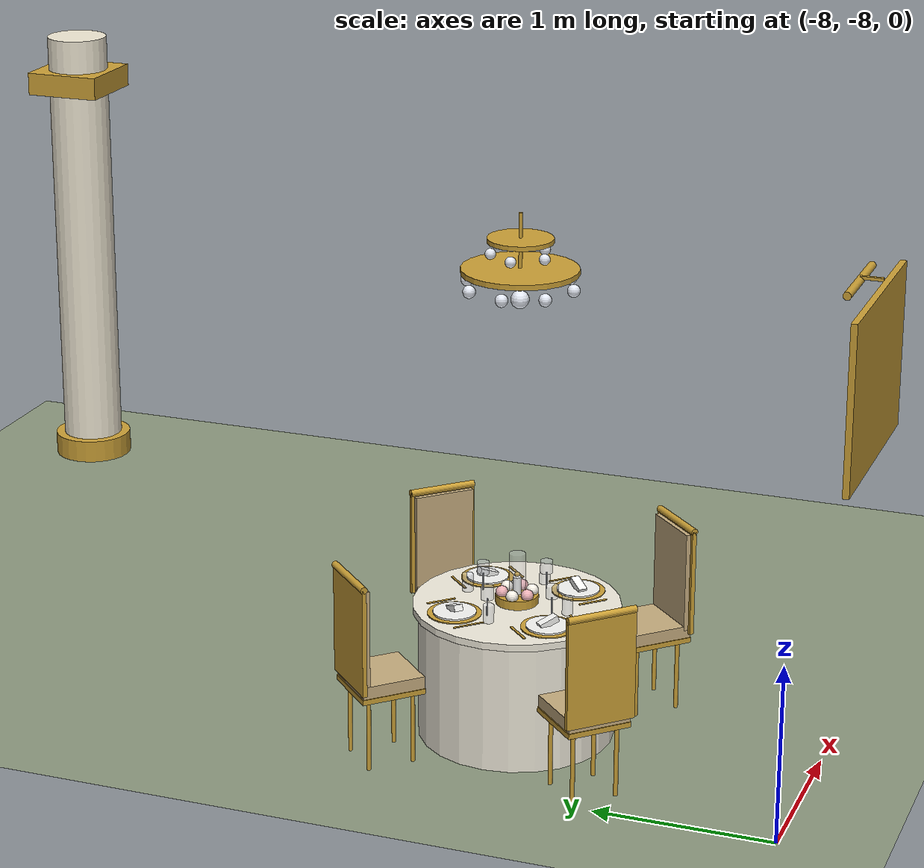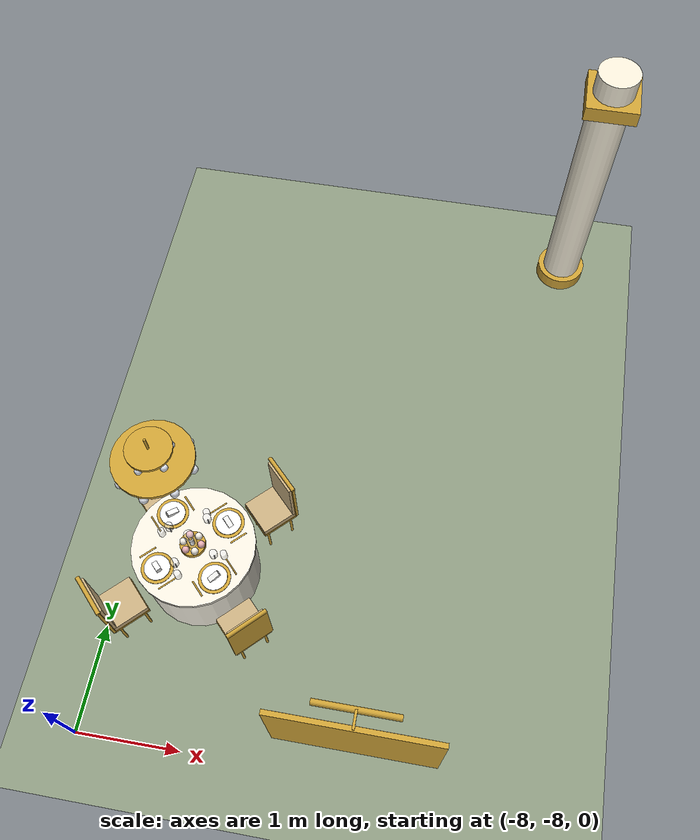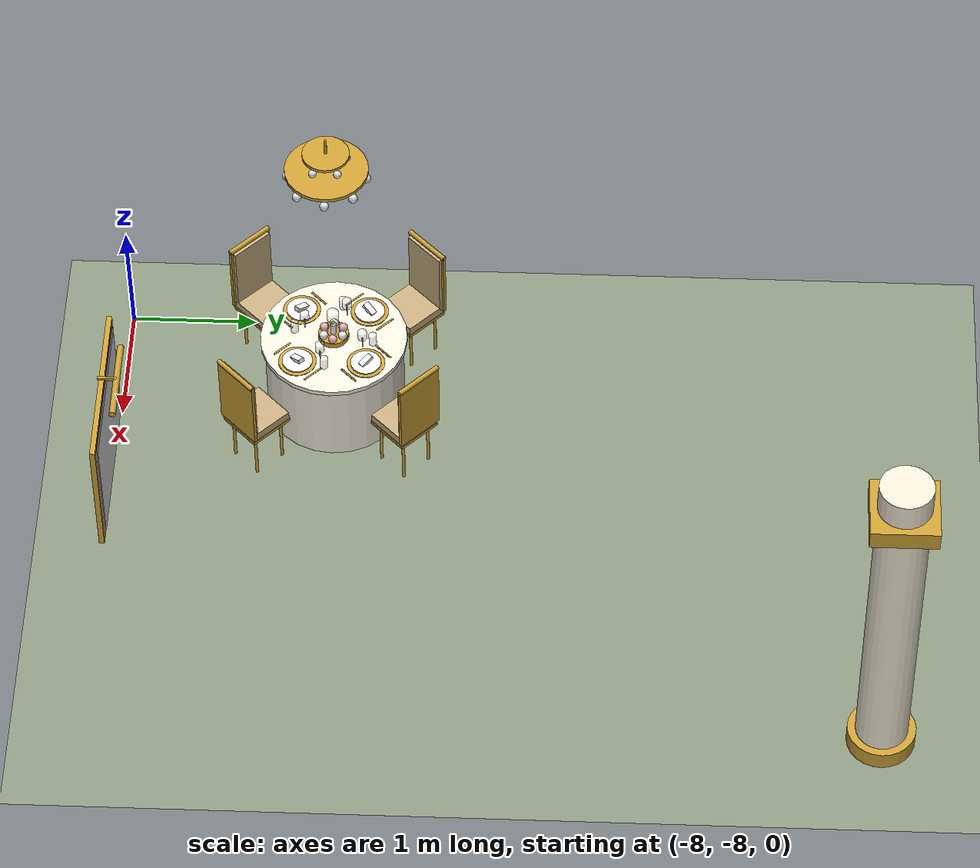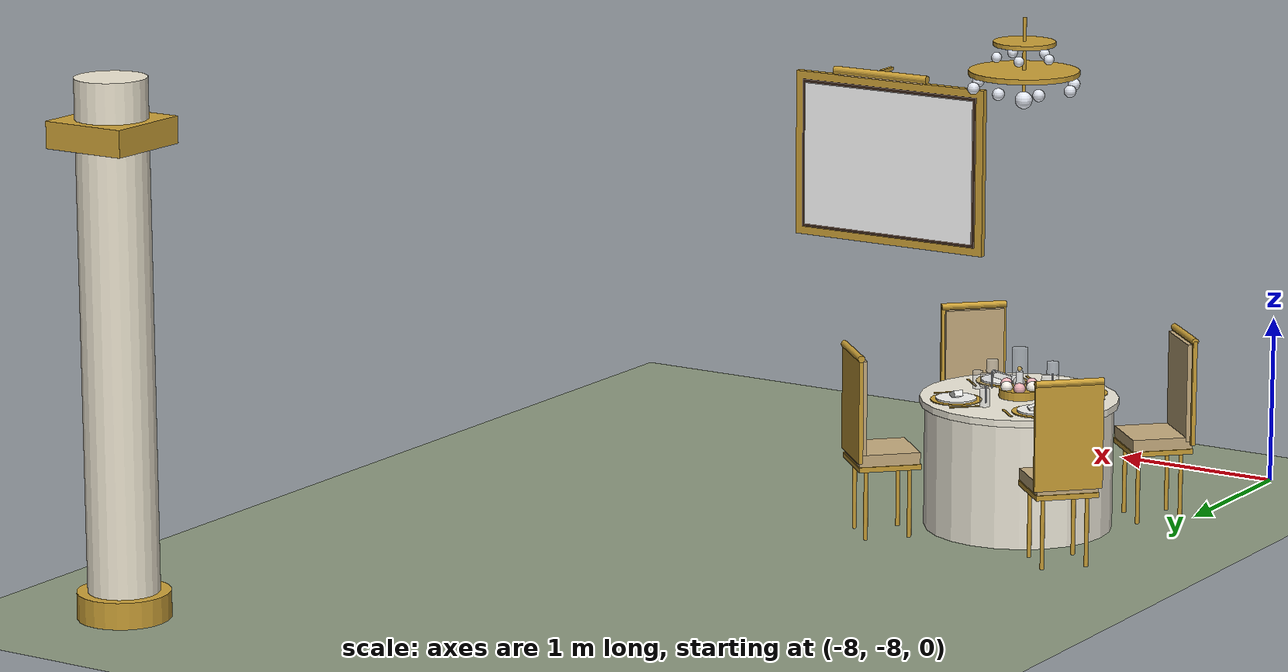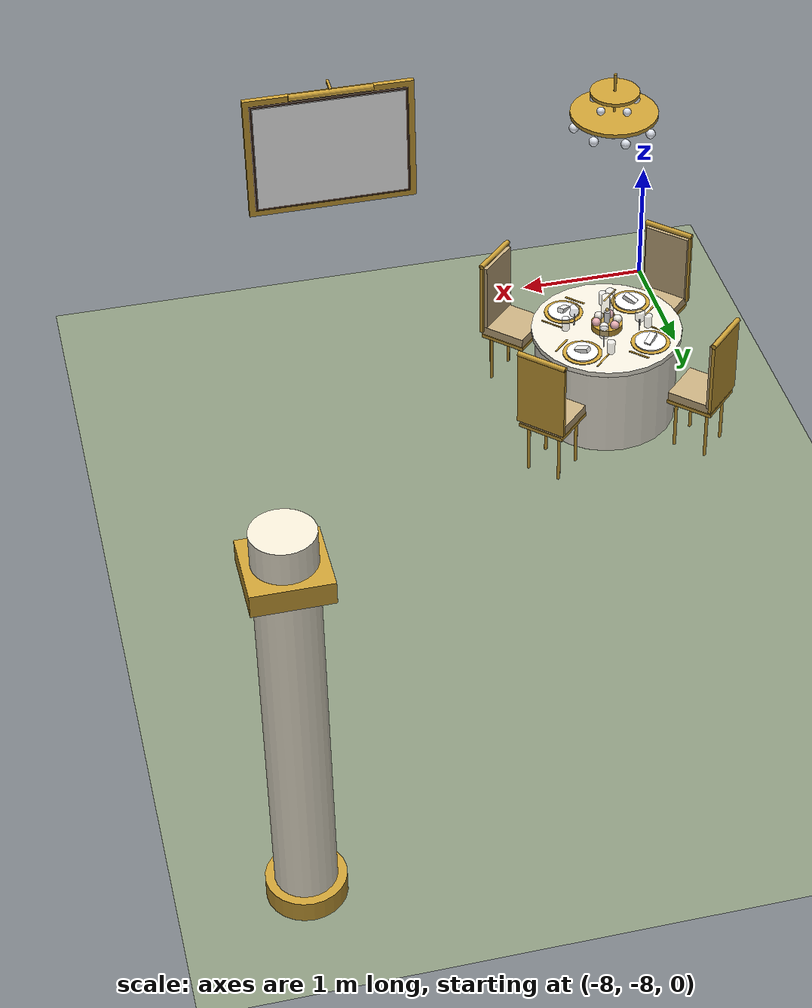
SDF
<sdf version="1.9">
 <world name="dar_tunibot">
  <model name="ground_plane">
   <static>true</static>
   <link name="link">
    <collision name="collision">
     <geometry><plane><normal>0 0 1</normal><size>60 60</size></plane></geometry>
    </collision>
    <visual name="visual">
     <geometry><plane><normal>0 0 1</normal><size>60 60</size></plane></geometry>
     <material><ambient>0.55 0.6 0.5 1</ambient><diffuse>0.55 0.6 0.5 1</diffuse></material>
    </visual>
   </link>
  </model>
  <model name="column_0">
   <static>true</static>
   <pose>-4 -2 0 0 0 0</pose>
   <link name="link">
    <visual name="base_v">
     <pose>0.000 0.000 0.075 0.0000 0.0000 0.0000</pose>
     <geometry><cylinder><radius>0.260</radius><length>0.150</length></cylinder></geometry>
     <material>
      <ambient>0.8 0.63 0.21 1</ambient>
      <diffuse>0.8 0.63 0.21 1</diffuse>
      <specular>0.1 0.1 0.1 1</specular>
     </material>
    </visual>
    <collision name="base_c">
     <pose>0.000 0.000 0.075 0.0000 0.0000 0.0000</pose>
     <geometry><cylinder><radius>0.260</radius><length>0.150</length></cylinder></geometry>
    </collision>
    <visual name="shaft_v">
     <pose>0.000 0.000 1.500 0.0000 0.0000 0.0000</pose>
     <geometry><cylinder><radius>0.200</radius><length>3.000</length></cylinder></geometry>
     <material>
      <ambient>0.95 0.92 0.84 1</ambient>
      <diffuse>0.95 0.92 0.84 1</diffuse>
      <specular>0.1 0.1 0.1 1</specular>
     </material>
    </visual>
    <collision name="shaft_c">
     <pose>0.000 0.000 1.500 0.0000 0.0000 0.0000</pose>
     <geometry><cylinder><radius>0.200</radius><length>3.000</length></cylinder></geometry>
    </collision>
    <visual name="capital_v">
     <pose>0.000 0.000 2.700 0.0000 0.0000 0.0000</pose>
     <geometry><box><size>0.500 0.500 0.150</size></box></geometry>
     <material>
      <ambient>0.8 0.63 0.21 1</ambient>
      <diffuse>0.8 0.63 0.21 1</diffuse>
      <specular>0.1 0.1 0.1 1</specular>
     </material>
    </visual>
   </link>
  </model>
  <model name="table_5">
   <static>true</static>
   <pose>-7.2 -6.3 0 0 0 0</pose>
   <link name="link">
    <visual name="cloth_v">
     <pose>0.000 0.000 0.370 0.0000 0.0000 0.0000</pose>
     <geometry><cylinder><radius>0.550</radius><length>0.740</length></cylinder></geometry>
     <material>
      <ambient>0.95 0.93 0.87 1</ambient>
      <diffuse>0.95 0.93 0.87 1</diffuse>
      <specular>0.1 0.1 0.1 1</specular>
     </material>
    </visual>
    <collision name="cloth_c">
     <pose>0.000 0.000 0.370 0.0000 0.0000 0.0000</pose>
     <geometry><cylinder><radius>0.550</radius><length>0.740</length></cylinder></geometry>
    </collision>
    <visual name="drape_v">
     <pose>0.000 0.000 0.750 0.0000 0.0000 0.0000</pose>
     <geometry><cylinder><radius>0.580</radius><length>0.040</length></cylinder></geometry>
     <material>
      <ambient>0.95 0.93 0.87 1</ambient>
      <diffuse>0.95 0.93 0.87 1</diffuse>
      <specular>0.1 0.1 0.1 1</specular>
     </material>
    </visual>
    <visual name="bowl_v">
     <pose>0.000 0.000 0.795 0.0000 0.0000 0.0000</pose>
     <geometry><cylinder><radius>0.120</radius><length>0.050</length></cylinder></geometry>
     <material>
      <ambient>0.8 0.63 0.21 1</ambient>
      <diffuse>0.8 0.63 0.21 1</diffuse>
      <specular>0.1 0.1 0.1 1</specular>
     </material>
    </visual>
    <visual name="bowl_foot_v">
     <pose>0.000 0.000 0.775 0.0000 0.0000 0.0000</pose>
     <geometry><cylinder><radius>0.060</radius><length>0.020</length></cylinder></geometry>
     <material>
      <ambient>0.8 0.63 0.21 1</ambient>
      <diffuse>0.8 0.63 0.21 1</diffuse>
      <specular>0.1 0.1 0.1 1</specular>
     </material>
    </visual>
    <visual name="candle_v">
     <pose>0.000 0.000 0.870 0.0000 0.0000 0.0000</pose>
     <geometry><cylinder><radius>0.022</radius><length>0.100</length></cylinder></geometry>
     <material>
      <ambient>0.98 0.98 0.97 1</ambient>
      <diffuse>0.98 0.98 0.97 1</diffuse>
      <specular>0.1 0.1 0.1 1</specular>
     </material>
    </visual>
    <visual name="flame_v">
     <pose>0.000 0.000 0.935 0.0000 0.0000 0.0000</pose>
     <geometry><sphere><radius>0.014</radius></sphere></geometry>
     <material>
      <ambient>0.8 0.63 0.21 1</ambient>
      <diffuse>0.8 0.63 0.21 1</diffuse>
      <specular>0.1 0.1 0.1 1</specular>
      <emissive>1.0 0.6 0.2 1</emissive>
     </material>
    </visual>
    <visual name="hurricane_v">
     <pose>0.000 0.000 0.940 0.0000 0.0000 0.0000</pose>
     <geometry><cylinder><radius>0.045</radius><length>0.240</length></cylinder></geometry>
     <transparency>0.75</transparency>
     <material>
      <ambient>0.9 0.92 0.96 1</ambient>
      <diffuse>0.9 0.92 0.96 1</diffuse>
      <specular>0.1 0.1 0.1 1</specular>
     </material>
    </visual>
    <visual name="rose0_v">
     <pose>0.085 0.000 0.835 0.0000 0.0000 0.0000</pose>
     <geometry><sphere><radius>0.035</radius></sphere></geometry>
     <material>
      <ambient>0.93 0.7 0.72 1</ambient>
      <diffuse>0.93 0.7 0.72 1</diffuse>
      <specular>0.1 0.1 0.1 1</specular>
     </material>
    </visual>
    <visual name="rose1_v">
     <pose>0.043 0.074 0.835 0.0000 0.0000 0.0000</pose>
     <geometry><sphere><radius>0.035</radius></sphere></geometry>
     <material>
      <ambient>0.97 0.95 0.91 1</ambient>
      <diffuse>0.97 0.95 0.91 1</diffuse>
      <specular>0.1 0.1 0.1 1</specular>
     </material>
    </visual>
    <visual name="rose2_v">
     <pose>-0.042 0.074 0.835 0.0000 0.0000 0.0000</pose>
     <geometry><sphere><radius>0.035</radius></sphere></geometry>
     <material>
      <ambient>0.93 0.7 0.72 1</ambient>
      <diffuse>0.93 0.7 0.72 1</diffuse>
      <specular>0.1 0.1 0.1 1</specular>
     </material>
    </visual>
    <visual name="rose3_v">
     <pose>-0.085 0.000 0.835 0.0000 0.0000 0.0000</pose>
     <geometry><sphere><radius>0.035</radius></sphere></geometry>
     <material>
      <ambient>0.97 0.95 0.91 1</ambient>
      <diffuse>0.97 0.95 0.91 1</diffuse>
      <specular>0.1 0.1 0.1 1</specular>
     </material>
    </visual>
    <visual name="rose4_v">
     <pose>-0.043 -0.074 0.835 0.0000 0.0000 0.0000</pose>
     <geometry><sphere><radius>0.035</radius></sphere></geometry>
     <material>
      <ambient>0.93 0.7 0.72 1</ambient>
      <diffuse>0.93 0.7 0.72 1</diffuse>
      <specular>0.1 0.1 0.1 1</specular>
     </material>
    </visual>
    <visual name="rose5_v">
     <pose>0.043 -0.074 0.835 0.0000 0.0000 0.0000</pose>
     <geometry><sphere><radius>0.035</radius></sphere></geometry>
     <material>
      <ambient>0.97 0.95 0.91 1</ambient>
      <diffuse>0.97 0.95 0.91 1</diffuse>
      <specular>0.1 0.1 0.1 1</specular>
     </material>
    </visual>
    <collision name="seat0_c">
     <pose>0.580 0.580 0.225 0.0000 0.0000 0.0000</pose>
     <geometry><box><size>0.400 0.400 0.450</size></box></geometry>
    </collision>
    <visual name="seat_frame0_v">
     <pose>0.580 0.580 0.430 0.0000 0.0000 0.7854</pose>
     <geometry><box><size>0.370 0.370 0.030</size></box></geometry>
     <material>
      <ambient>0.8 0.63 0.21 1</ambient>
      <diffuse>0.8 0.63 0.21 1</diffuse>
      <specular>0.1 0.1 0.1 1</specular>
     </material>
    </visual>
    <visual name="cushion0_v">
     <pose>0.580 0.580 0.480 0.0000 0.0000 0.7854</pose>
     <geometry><box><size>0.360 0.360 0.070</size></box></geometry>
     <material>
      <ambient>0.78 0.68 0.5 1</ambient>
      <diffuse>0.78 0.68 0.5 1</diffuse>
      <specular>0.1 0.1 0.1 1</specular>
     </material>
    </visual>
    <visual name="back_frame0_v">
     <pose>0.707 0.707 0.780 0.0000 0.0000 0.7854</pose>
     <geometry><box><size>0.025 0.400 0.620</size></box></geometry>
     <material>
      <ambient>0.8 0.63 0.21 1</ambient>
      <diffuse>0.8 0.63 0.21 1</diffuse>
      <specular>0.1 0.1 0.1 1</specular>
     </material>
    </visual>
    <visual name="back0_v">
     <pose>0.697 0.697 0.780 0.0000 0.0000 0.7854</pose>
     <geometry><box><size>0.050 0.360 0.580</size></box></geometry>
     <material>
      <ambient>0.78 0.68 0.5 1</ambient>
      <diffuse>0.78 0.68 0.5 1</diffuse>
      <specular>0.1 0.1 0.1 1</specular>
     </material>
    </visual>
    <visual name="back_top0_v">
     <pose>0.707 0.707 1.090 1.5708 0.0000 0.7854</pose>
     <geometry><cylinder><radius>0.020</radius><length>0.400</length></cylinder></geometry>
     <material>
      <ambient>0.8 0.63 0.21 1</ambient>
      <diffuse>0.8 0.63 0.21 1</diffuse>
      <specular>0.1 0.1 0.1 1</specular>
     </material>
    </visual>
    <visual name="leg0_0_v">
     <pose>0.580 0.396 0.210 0.0000 0.0000 0.7854</pose>
     <geometry><cylinder><radius>0.012</radius><length>0.420</length></cylinder></geometry>
     <material>
      <ambient>0.8 0.63 0.21 1</ambient>
      <diffuse>0.8 0.63 0.21 1</diffuse>
      <specular>0.1 0.1 0.1 1</specular>
     </material>
    </visual>
    <visual name="leg0_1_v">
     <pose>0.396 0.580 0.210 0.0000 0.0000 0.7854</pose>
     <geometry><cylinder><radius>0.012</radius><length>0.420</length></cylinder></geometry>
     <material>
      <ambient>0.8 0.63 0.21 1</ambient>
      <diffuse>0.8 0.63 0.21 1</diffuse>
      <specular>0.1 0.1 0.1 1</specular>
     </material>
    </visual>
    <visual name="leg0_2_v">
     <pose>0.764 0.580 0.210 0.0000 0.0000 0.7854</pose>
     <geometry><cylinder><radius>0.012</radius><length>0.420</length></cylinder></geometry>
     <material>
      <ambient>0.8 0.63 0.21 1</ambient>
      <diffuse>0.8 0.63 0.21 1</diffuse>
      <specular>0.1 0.1 0.1 1</specular>
     </material>
    </visual>
    <visual name="leg0_3_v">
     <pose>0.580 0.764 0.210 0.0000 0.0000 0.7854</pose>
     <geometry><cylinder><radius>0.012</radius><length>0.420</length></cylinder></geometry>
     <material>
      <ambient>0.8 0.63 0.21 1</ambient>
      <diffuse>0.8 0.63 0.21 1</diffuse>
      <specular>0.1 0.1 0.1 1</specular>
     </material>
    </visual>
    <visual name="charger0_v">
     <pose>0.269 0.269 0.773 0.0000 0.0000 0.7854</pose>
     <geometry><cylinder><radius>0.150</radius><length>0.006</length></cylinder></geometry>
     <material>
      <ambient>0.8 0.63 0.21 1</ambient>
      <diffuse>0.8 0.63 0.21 1</diffuse>
      <specular>0.1 0.1 0.1 1</specular>
     </material>
    </visual>
    <visual name="plate0_v">
     <pose>0.269 0.269 0.781 0.0000 0.0000 0.7854</pose>
     <geometry><cylinder><radius>0.120</radius><length>0.010</length></cylinder></geometry>
     <material>
      <ambient>0.98 0.98 0.97 1</ambient>
      <diffuse>0.98 0.98 0.97 1</diffuse>
      <specular>0.1 0.1 0.1 1</specular>
     </material>
    </visual>
    <visual name="napkin0_v">
     <pose>0.269 0.269 0.803 0.3500 0.0000 0.7854</pose>
     <geometry><box><size>0.050 0.110 0.035</size></box></geometry>
     <material>
      <ambient>0.98 0.98 0.97 1</ambient>
      <diffuse>0.98 0.98 0.97 1</diffuse>
      <specular>0.1 0.1 0.1 1</specular>
     </material>
    </visual>
    <visual name="fork0_v">
     <pose>0.396 0.141 0.772 0.0000 0.0000 0.7854</pose>
     <geometry><box><size>0.170 0.014 0.004</size></box></geometry>
     <material>
      <ambient>0.8 0.63 0.21 1</ambient>
      <diffuse>0.8 0.63 0.21 1</diffuse>
      <specular>0.1 0.1 0.1 1</specular>
     </material>
    </visual>
    <visual name="knife0_v">
     <pose>0.141 0.396 0.772 0.0000 0.0000 0.7854</pose>
     <geometry><box><size>0.180 0.012 0.004</size></box></geometry>
     <material>
      <ambient>0.8 0.63 0.21 1</ambient>
      <diffuse>0.8 0.63 0.21 1</diffuse>
      <specular>0.1 0.1 0.1 1</specular>
     </material>
    </visual>
    <visual name="wine_stem0_v">
     <pose>0.092 0.233 0.820 0.0000 0.0000 0.7854</pose>
     <geometry><cylinder><radius>0.004</radius><length>0.100</length></cylinder></geometry>
     <material>
      <ambient>0.9 0.92 0.96 1</ambient>
      <diffuse>0.9 0.92 0.96 1</diffuse>
      <specular>0.1 0.1 0.1 1</specular>
     </material>
    </visual>
    <visual name="wine_bowl0_v">
     <pose>0.092 0.233 0.905 0.0000 0.0000 0.7854</pose>
     <geometry><cylinder><radius>0.035</radius><length>0.070</length></cylinder></geometry>
     <transparency>0.6</transparency>
     <material>
      <ambient>0.9 0.92 0.96 1</ambient>
      <diffuse>0.9 0.92 0.96 1</diffuse>
      <specular>0.1 0.1 0.1 1</specular>
     </material>
    </visual>
    <visual name="water0_v">
     <pose>0.057 0.311 0.820 0.0000 0.0000 0.7854</pose>
     <geometry><cylinder><radius>0.030</radius><length>0.100</length></cylinder></geometry>
     <transparency>0.6</transparency>
     <material>
      <ambient>0.9 0.92 0.96 1</ambient>
      <diffuse>0.9 0.92 0.96 1</diffuse>
      <specular>0.1 0.1 0.1 1</specular>
     </material>
    </visual>
    <collision name="seat1_c">
     <pose>-0.580 0.580 0.225 0.0000 0.0000 0.0000</pose>
     <geometry><box><size>0.400 0.400 0.450</size></box></geometry>
    </collision>
    <visual name="seat_frame1_v">
     <pose>-0.580 0.580 0.430 0.0000 0.0000 2.3562</pose>
     <geometry><box><size>0.370 0.370 0.030</size></box></geometry>
     <material>
      <ambient>0.8 0.63 0.21 1</ambient>
      <diffuse>0.8 0.63 0.21 1</diffuse>
      <specular>0.1 0.1 0.1 1</specular>
     </material>
    </visual>
    <visual name="cushion1_v">
     <pose>-0.580 0.580 0.480 0.0000 0.0000 2.3562</pose>
     <geometry><box><size>0.360 0.360 0.070</size></box></geometry>
     <material>
      <ambient>0.78 0.68 0.5 1</ambient>
      <diffuse>0.78 0.68 0.5 1</diffuse>
      <specular>0.1 0.1 0.1 1</specular>
     </material>
    </visual>
    <visual name="back_frame1_v">
     <pose>-0.707 0.707 0.780 0.0000 0.0000 2.3562</pose>
     <geometry><box><size>0.025 0.400 0.620</size></box></geometry>
     <material>
      <ambient>0.8 0.63 0.21 1</ambient>
      <diffuse>0.8 0.63 0.21 1</diffuse>
      <specular>0.1 0.1 0.1 1</specular>
     </material>
    </visual>
    <visual name="back1_v">
     <pose>-0.697 0.697 0.780 0.0000 0.0000 2.3562</pose>
     <geometry><box><size>0.050 0.360 0.580</size></box></geometry>
     <material>
      <ambient>0.78 0.68 0.5 1</ambient>
      <diffuse>0.78 0.68 0.5 1</diffuse>
      <specular>0.1 0.1 0.1 1</specular>
     </material>
    </visual>
    <visual name="back_top1_v">
     <pose>-0.707 0.707 1.090 1.5708 0.0000 2.3562</pose>
     <geometry><cylinder><radius>0.020</radius><length>0.400</length></cylinder></geometry>
     <material>
      <ambient>0.8 0.63 0.21 1</ambient>
      <diffuse>0.8 0.63 0.21 1</diffuse>
      <specular>0.1 0.1 0.1 1</specular>
     </material>
    </visual>
    <visual name="leg1_0_v">
     <pose>-0.396 0.580 0.210 0.0000 0.0000 2.3562</pose>
     <geometry><cylinder><radius>0.012</radius><length>0.420</length></cylinder></geometry>
     <material>
      <ambient>0.8 0.63 0.21 1</ambient>
      <diffuse>0.8 0.63 0.21 1</diffuse>
      <specular>0.1 0.1 0.1 1</specular>
     </material>
    </visual>
    <visual name="leg1_1_v">
     <pose>-0.580 0.396 0.210 0.0000 0.0000 2.3562</pose>
     <geometry><cylinder><radius>0.012</radius><length>0.420</length></cylinder></geometry>
     <material>
      <ambient>0.8 0.63 0.21 1</ambient>
      <diffuse>0.8 0.63 0.21 1</diffuse>
      <specular>0.1 0.1 0.1 1</specular>
     </material>
    </visual>
    <visual name="leg1_2_v">
     <pose>-0.580 0.764 0.210 0.0000 0.0000 2.3562</pose>
     <geometry><cylinder><radius>0.012</radius><length>0.420</length></cylinder></geometry>
     <material>
      <ambient>0.8 0.63 0.21 1</ambient>
      <diffuse>0.8 0.63 0.21 1</diffuse>
      <specular>0.1 0.1 0.1 1</specular>
     </material>
    </visual>
    <visual name="leg1_3_v">
     <pose>-0.764 0.580 0.210 0.0000 0.0000 2.3562</pose>
     <geometry><cylinder><radius>0.012</radius><length>0.420</length></cylinder></geometry>
     <material>
      <ambient>0.8 0.63 0.21 1</ambient>
      <diffuse>0.8 0.63 0.21 1</diffuse>
      <specular>0.1 0.1 0.1 1</specular>
     </material>
    </visual>
    <visual name="charger1_v">
     <pose>-0.269 0.269 0.773 0.0000 0.0000 2.3562</pose>
     <geometry><cylinder><radius>0.150</radius><length>0.006</length></cylinder></geometry>
     <material>
      <ambient>0.8 0.63 0.21 1</ambient>
      <diffuse>0.8 0.63 0.21 1</diffuse>
      <specular>0.1 0.1 0.1 1</specular>
     </material>
    </visual>
    <visual name="plate1_v">
     <pose>-0.269 0.269 0.781 0.0000 0.0000 2.3562</pose>
     <geometry><cylinder><radius>0.120</radius><length>0.010</length></cylinder></geometry>
     <material>
      <ambient>0.98 0.98 0.97 1</ambient>
      <diffuse>0.98 0.98 0.97 1</diffuse>
      <specular>0.1 0.1 0.1 1</specular>
     </material>
    </visual>
    <visual name="napkin1_v">
     <pose>-0.269 0.269 0.803 0.3500 0.0000 2.3562</pose>
     <geometry><box><size>0.050 0.110 0.035</size></box></geometry>
     <material>
      <ambient>0.98 0.98 0.97 1</ambient>
      <diffuse>0.98 0.98 0.97 1</diffuse>
      <specular>0.1 0.1 0.1 1</specular>
     </material>
    </visual>
    <visual name="fork1_v">
     <pose>-0.141 0.396 0.772 0.0000 0.0000 2.3562</pose>
     <geometry><box><size>0.170 0.014 0.004</size></box></geometry>
     <material>
      <ambient>0.8 0.63 0.21 1</ambient>
      <diffuse>0.8 0.63 0.21 1</diffuse>
      <specular>0.1 0.1 0.1 1</specular>
     </material>
    </visual>
    <visual name="knife1_v">
     <pose>-0.396 0.141 0.772 0.0000 0.0000 2.3562</pose>
     <geometry><box><size>0.180 0.012 0.004</size></box></geometry>
     <material>
      <ambient>0.8 0.63 0.21 1</ambient>
      <diffuse>0.8 0.63 0.21 1</diffuse>
      <specular>0.1 0.1 0.1 1</specular>
     </material>
    </visual>
    <visual name="wine_stem1_v">
     <pose>-0.233 0.092 0.820 0.0000 0.0000 2.3562</pose>
     <geometry><cylinder><radius>0.004</radius><length>0.100</length></cylinder></geometry>
     <material>
      <ambient>0.9 0.92 0.96 1</ambient>
      <diffuse>0.9 0.92 0.96 1</diffuse>
      <specular>0.1 0.1 0.1 1</specular>
     </material>
    </visual>
    <visual name="wine_bowl1_v">
     <pose>-0.233 0.092 0.905 0.0000 0.0000 2.3562</pose>
     <geometry><cylinder><radius>0.035</radius><length>0.070</length></cylinder></geometry>
     <transparency>0.6</transparency>
     <material>
      <ambient>0.9 0.92 0.96 1</ambient>
      <diffuse>0.9 0.92 0.96 1</diffuse>
      <specular>0.1 0.1 0.1 1</specular>
     </material>
    </visual>
    <visual name="water1_v">
     <pose>-0.311 0.057 0.820 0.0000 0.0000 2.3562</pose>
     <geometry><cylinder><radius>0.030</radius><length>0.100</length></cylinder></geometry>
     <transparency>0.6</transparency>
     <material>
      <ambient>0.9 0.92 0.96 1</ambient>
      <diffuse>0.9 0.92 0.96 1</diffuse>
      <specular>0.1 0.1 0.1 1</specular>
     </material>
    </visual>
    <collision name="seat2_c">
     <pose>-0.580 -0.580 0.225 0.0000 0.0000 0.0000</pose>
     <geometry><box><size>0.400 0.400 0.450</size></box></geometry>
    </collision>
    <visual name="seat_frame2_v">
     <pose>-0.580 -0.580 0.430 0.0000 0.0000 3.9270</pose>
     <geometry><box><size>0.370 0.370 0.030</size></box></geometry>
     <material>
      <ambient>0.8 0.63 0.21 1</ambient>
      <diffuse>0.8 0.63 0.21 1</diffuse>
      <specular>0.1 0.1 0.1 1</specular>
     </material>
    </visual>
    <visual name="cushion2_v">
     <pose>-0.580 -0.580 0.480 0.0000 0.0000 3.9270</pose>
     <geometry><box><size>0.360 0.360 0.070</size></box></geometry>
     <material>
      <ambient>0.78 0.68 0.5 1</ambient>
      <diffuse>0.78 0.68 0.5 1</diffuse>
      <specular>0.1 0.1 0.1 1</specular>
     </material>
    </visual>
    <visual name="back_frame2_v">
     <pose>-0.707 -0.707 0.780 0.0000 0.0000 3.9270</pose>
     <geometry><box><size>0.025 0.400 0.620</size></box></geometry>
     <material>
      <ambient>0.8 0.63 0.21 1</ambient>
      <diffuse>0.8 0.63 0.21 1</diffuse>
      <specular>0.1 0.1 0.1 1</specular>
     </material>
    </visual>
    <visual name="back2_v">
     <pose>-0.697 -0.697 0.780 0.0000 0.0000 3.9270</pose>
     <geometry><box><size>0.050 0.360 0.580</size></box></geometry>
     <material>
      <ambient>0.78 0.68 0.5 1</ambient>
      <diffuse>0.78 0.68 0.5 1</diffuse>
      <specular>0.1 0.1 0.1 1</specular>
     </material>
    </visual>
    <visual name="back_top2_v">
     <pose>-0.707 -0.707 1.090 1.5708 0.0000 3.9270</pose>
     <geometry><cylinder><radius>0.020</radius><length>0.400</length></cylinder></geometry>
     <material>
      <ambient>0.8 0.63 0.21 1</ambient>
      <diffuse>0.8 0.63 0.21 1</diffuse>
      <specular>0.1 0.1 0.1 1</specular>
     </material>
    </visual>
    <visual name="leg2_0_v">
     <pose>-0.580 -0.396 0.210 0.0000 0.0000 3.9270</pose>
     <geometry><cylinder><radius>0.012</radius><length>0.420</length></cylinder></geometry>
     <material>
      <ambient>0.8 0.63 0.21 1</ambient>
      <diffuse>0.8 0.63 0.21 1</diffuse>
      <specular>0.1 0.1 0.1 1</specular>
     </material>
    </visual>
    <visual name="leg2_1_v">
     <pose>-0.396 -0.580 0.210 0.0000 0.0000 3.9270</pose>
     <geometry><cylinder><radius>0.012</radius><length>0.420</length></cylinder></geometry>
     <material>
      <ambient>0.8 0.63 0.21 1</ambient>
      <diffuse>0.8 0.63 0.21 1</diffuse>
      <specular>0.1 0.1 0.1 1</specular>
     </material>
    </visual>
    <visual name="leg2_2_v">
     <pose>-0.764 -0.580 0.210 0.0000 0.0000 3.9270</pose>
     <geometry><cylinder><radius>0.012</radius><length>0.420</length></cylinder></geometry>
     <material>
      <ambient>0.8 0.63 0.21 1</ambient>
      <diffuse>0.8 0.63 0.21 1</diffuse>
      <specular>0.1 0.1 0.1 1</specular>
     </material>
    </visual>
    <visual name="leg2_3_v">
     <pose>-0.580 -0.764 0.210 0.0000 0.0000 3.9270</pose>
     <geometry><cylinder><radius>0.012</radius><length>0.420</length></cylinder></geometry>
     <material>
      <ambient>0.8 0.63 0.21 1</ambient>
      <diffuse>0.8 0.63 0.21 1</diffuse>
      <specular>0.1 0.1 0.1 1</specular>
     </material>
    </visual>
    <visual name="charger2_v">
     <pose>-0.269 -0.269 0.773 0.0000 0.0000 3.9270</pose>
     <geometry><cylinder><radius>0.150</radius><length>0.006</length></cylinder></geometry>
     <material>
      <ambient>0.8 0.63 0.21 1</ambient>
      <diffuse>0.8 0.63 0.21 1</diffuse>
      <specular>0.1 0.1 0.1 1</specular>
     </material>
    </visual>
    <visual name="plate2_v">
     <pose>-0.269 -0.269 0.781 0.0000 0.0000 3.9270</pose>
     <geometry><cylinder><radius>0.120</radius><length>0.010</length></cylinder></geometry>
     <material>
      <ambient>0.98 0.98 0.97 1</ambient>
      <diffuse>0.98 0.98 0.97 1</diffuse>
      <specular>0.1 0.1 0.1 1</specular>
     </material>
    </visual>
    <visual name="napkin2_v">
     <pose>-0.269 -0.269 0.803 0.3500 0.0000 3.9270</pose>
     <geometry><box><size>0.050 0.110 0.035</size></box></geometry>
     <material>
      <ambient>0.98 0.98 0.97 1</ambient>
      <diffuse>0.98 0.98 0.97 1</diffuse>
      <specular>0.1 0.1 0.1 1</specular>
     </material>
    </visual>
    <visual name="fork2_v">
     <pose>-0.396 -0.141 0.772 0.0000 0.0000 3.9270</pose>
     <geometry><box><size>0.170 0.014 0.004</size></box></geometry>
     <material>
      <ambient>0.8 0.63 0.21 1</ambient>
      <diffuse>0.8 0.63 0.21 1</diffuse>
      <specular>0.1 0.1 0.1 1</specular>
     </material>
    </visual>
    <visual name="knife2_v">
     <pose>-0.141 -0.396 0.772 0.0000 0.0000 3.9270</pose>
     <geometry><box><size>0.180 0.012 0.004</size></box></geometry>
     <material>
      <ambient>0.8 0.63 0.21 1</ambient>
      <diffuse>0.8 0.63 0.21 1</diffuse>
      <specular>0.1 0.1 0.1 1</specular>
     </material>
    </visual>
    <visual name="wine_stem2_v">
     <pose>-0.092 -0.233 0.820 0.0000 0.0000 3.9270</pose>
     <geometry><cylinder><radius>0.004</radius><length>0.100</length></cylinder></geometry>
     <material>
      <ambient>0.9 0.92 0.96 1</ambient>
      <diffuse>0.9 0.92 0.96 1</diffuse>
      <specular>0.1 0.1 0.1 1</specular>
     </material>
    </visual>
    <visual name="wine_bowl2_v">
     <pose>-0.092 -0.233 0.905 0.0000 0.0000 3.9270</pose>
     <geometry><cylinder><radius>0.035</radius><length>0.070</length></cylinder></geometry>
     <transparency>0.6</transparency>
     <material>
      <ambient>0.9 0.92 0.96 1</ambient>
      <diffuse>0.9 0.92 0.96 1</diffuse>
      <specular>0.1 0.1 0.1 1</specular>
     </material>
    </visual>
    <visual name="water2_v">
     <pose>-0.057 -0.311 0.820 0.0000 0.0000 3.9270</pose>
     <geometry><cylinder><radius>0.030</radius><length>0.100</length></cylinder></geometry>
     <transparency>0.6</transparency>
     <material>
      <ambient>0.9 0.92 0.96 1</ambient>
      <diffuse>0.9 0.92 0.96 1</diffuse>
      <specular>0.1 0.1 0.1 1</specular>
     </material>
    </visual>
    <collision name="seat3_c">
     <pose>0.580 -0.580 0.225 0.0000 0.0000 0.0000</pose>
     <geometry><box><size>0.400 0.400 0.450</size></box></geometry>
    </collision>
    <visual name="seat_frame3_v">
     <pose>0.580 -0.580 0.430 0.0000 0.0000 5.4978</pose>
     <geometry><box><size>0.370 0.370 0.030</size></box></geometry>
     <material>
      <ambient>0.8 0.63 0.21 1</ambient>
      <diffuse>0.8 0.63 0.21 1</diffuse>
      <specular>0.1 0.1 0.1 1</specular>
     </material>
    </visual>
    <visual name="cushion3_v">
     <pose>0.580 -0.580 0.480 0.0000 0.0000 5.4978</pose>
     <geometry><box><size>0.360 0.360 0.070</size></box></geometry>
     <material>
      <ambient>0.78 0.68 0.5 1</ambient>
      <diffuse>0.78 0.68 0.5 1</diffuse>
      <specular>0.1 0.1 0.1 1</specular>
     </material>
    </visual>
    <visual name="back_frame3_v">
     <pose>0.707 -0.707 0.780 0.0000 0.0000 5.4978</pose>
     <geometry><box><size>0.025 0.400 0.620</size></box></geometry>
     <material>
      <ambient>0.8 0.63 0.21 1</ambient>
      <diffuse>0.8 0.63 0.21 1</diffuse>
      <specular>0.1 0.1 0.1 1</specular>
     </material>
    </visual>
    <visual name="back3_v">
     <pose>0.697 -0.697 0.780 0.0000 0.0000 5.4978</pose>
     <geometry><box><size>0.050 0.360 0.580</size></box></geometry>
     <material>
      <ambient>0.78 0.68 0.5 1</ambient>
      <diffuse>0.78 0.68 0.5 1</diffuse>
      <specular>0.1 0.1 0.1 1</specular>
     </material>
    </visual>
    <visual name="back_top3_v">
     <pose>0.707 -0.707 1.090 1.5708 0.0000 5.4978</pose>
     <geometry><cylinder><radius>0.020</radius><length>0.400</length></cylinder></geometry>
     <material>
      <ambient>0.8 0.63 0.21 1</ambient>
      <diffuse>0.8 0.63 0.21 1</diffuse>
      <specular>0.1 0.1 0.1 1</specular>
     </material>
    </visual>
    <visual name="leg3_0_v">
     <pose>0.396 -0.580 0.210 0.0000 0.0000 5.4978</pose>
     <geometry><cylinder><radius>0.012</radius><length>0.420</length></cylinder></geometry>
     <material>
      <ambient>0.8 0.63 0.21 1</ambient>
      <diffuse>0.8 0.63 0.21 1</diffuse>
      <specular>0.1 0.1 0.1 1</specular>
     </material>
    </visual>
    <visual name="leg3_1_v">
     <pose>0.580 -0.396 0.210 0.0000 0.0000 5.4978</pose>
     <geometry><cylinder><radius>0.012</radius><length>0.420</length></cylinder></geometry>
     <material>
      <ambient>0.8 0.63 0.21 1</ambient>
      <diffuse>0.8 0.63 0.21 1</diffuse>
      <specular>0.1 0.1 0.1 1</specular>
     </material>
    </visual>
    <visual name="leg3_2_v">
     <pose>0.580 -0.764 0.210 0.0000 0.0000 5.4978</pose>
     <geometry><cylinder><radius>0.012</radius><length>0.420</length></cylinder></geometry>
     <material>
      <ambient>0.8 0.63 0.21 1</ambient>
      <diffuse>0.8 0.63 0.21 1</diffuse>
      <specular>0.1 0.1 0.1 1</specular>
     </material>
    </visual>
    <visual name="leg3_3_v">
     <pose>0.764 -0.580 0.210 0.0000 0.0000 5.4978</pose>
     <geometry><cylinder><radius>0.012</radius><length>0.420</length></cylinder></geometry>
     <material>
      <ambient>0.8 0.63 0.21 1</ambient>
      <diffuse>0.8 0.63 0.21 1</diffuse>
      <specular>0.1 0.1 0.1 1</specular>
     </material>
    </visual>
    <visual name="charger3_v">
     <pose>0.269 -0.269 0.773 0.0000 0.0000 5.4978</pose>
     <geometry><cylinder><radius>0.150</radius><length>0.006</length></cylinder></geometry>
     <material>
      <ambient>0.8 0.63 0.21 1</ambient>
      <diffuse>0.8 0.63 0.21 1</diffuse>
      <specular>0.1 0.1 0.1 1</specular>
     </material>
    </visual>
    <visual name="plate3_v">
     <pose>0.269 -0.269 0.781 0.0000 0.0000 5.4978</pose>
     <geometry><cylinder><radius>0.120</radius><length>0.010</length></cylinder></geometry>
     <material>
      <ambient>0.98 0.98 0.97 1</ambient>
      <diffuse>0.98 0.98 0.97 1</diffuse>
      <specular>0.1 0.1 0.1 1</specular>
     </material>
    </visual>
    <visual name="napkin3_v">
     <pose>0.269 -0.269 0.803 0.3500 0.0000 5.4978</pose>
     <geometry><box><size>0.050 0.110 0.035</size></box></geometry>
     <material>
      <ambient>0.98 0.98 0.97 1</ambient>
      <diffuse>0.98 0.98 0.97 1</diffuse>
      <specular>0.1 0.1 0.1 1</specular>
     </material>
    </visual>
    <visual name="fork3_v">
     <pose>0.141 -0.396 0.772 0.0000 0.0000 5.4978</pose>
     <geometry><box><size>0.170 0.014 0.004</size></box></geometry>
     <material>
      <ambient>0.8 0.63 0.21 1</ambient>
      <diffuse>0.8 0.63 0.21 1</diffuse>
      <specular>0.1 0.1 0.1 1</specular>
     </material>
    </visual>
    <visual name="knife3_v">
     <pose>0.396 -0.141 0.772 0.0000 0.0000 5.4978</pose>
     <geometry><box><size>0.180 0.012 0.004</size></box></geometry>
     <material>
      <ambient>0.8 0.63 0.21 1</ambient>
      <diffuse>0.8 0.63 0.21 1</diffuse>
      <specular>0.1 0.1 0.1 1</specular>
     </material>
    </visual>
    <visual name="wine_stem3_v">
     <pose>0.233 -0.092 0.820 0.0000 0.0000 5.4978</pose>
     <geometry><cylinder><radius>0.004</radius><length>0.100</length></cylinder></geometry>
     <material>
      <ambient>0.9 0.92 0.96 1</ambient>
      <diffuse>0.9 0.92 0.96 1</diffuse>
      <specular>0.1 0.1 0.1 1</specular>
     </material>
    </visual>
    <visual name="wine_bowl3_v">
     <pose>0.233 -0.092 0.905 0.0000 0.0000 5.4978</pose>
     <geometry><cylinder><radius>0.035</radius><length>0.070</length></cylinder></geometry>
     <transparency>0.6</transparency>
     <material>
      <ambient>0.9 0.92 0.96 1</ambient>
      <diffuse>0.9 0.92 0.96 1</diffuse>
      <specular>0.1 0.1 0.1 1</specular>
     </material>
    </visual>
    <visual name="water3_v">
     <pose>0.311 -0.057 0.820 0.0000 0.0000 5.4978</pose>
     <geometry><cylinder><radius>0.030</radius><length>0.100</length></cylinder></geometry>
     <transparency>0.6</transparency>
     <material>
      <ambient>0.9 0.92 0.96 1</ambient>
      <diffuse>0.9 0.92 0.96 1</diffuse>
      <specular>0.1 0.1 0.1 1</specular>
     </material>
    </visual>
    <visual name="chand_rod_v">
     <pose>0.000 0.000 2.750 0.0000 0.0000 0.0000</pose>
     <geometry><cylinder><radius>0.010</radius><length>0.500</length></cylinder></geometry>
     <material>
      <ambient>0.8 0.63 0.21 1</ambient>
      <diffuse>0.8 0.63 0.21 1</diffuse>
      <specular>0.1 0.1 0.1 1</specular>
     </material>
    </visual>
    <visual name="chand_ring_v">
     <pose>0.000 0.000 2.680 0.0000 0.0000 0.0000</pose>
     <geometry><cylinder><radius>0.320</radius><length>0.030</length></cylinder></geometry>
     <material>
      <ambient>0.8 0.63 0.21 1</ambient>
      <diffuse>0.8 0.63 0.21 1</diffuse>
      <specular>0.1 0.1 0.1 1</specular>
     </material>
    </visual>
    <visual name="chand_ring_top_v">
     <pose>0.000 0.000 2.850 0.0000 0.0000 0.0000</pose>
     <geometry><cylinder><radius>0.180</radius><length>0.025</length></cylinder></geometry>
     <material>
      <ambient>0.8 0.63 0.21 1</ambient>
      <diffuse>0.8 0.63 0.21 1</diffuse>
      <specular>0.1 0.1 0.1 1</specular>
     </material>
    </visual>
    <visual name="chand_drop_v">
     <pose>0.000 0.000 2.520 0.0000 0.0000 0.0000</pose>
     <geometry><sphere><radius>0.050</radius></sphere></geometry>
     <material>
      <ambient>0.9 0.92 0.96 1</ambient>
      <diffuse>0.9 0.92 0.96 1</diffuse>
      <specular>0.1 0.1 0.1 1</specular>
      <emissive>0.55 0.52 0.45 1</emissive>
     </material>
    </visual>
    <visual name="crystal0_0_v">
     <pose>0.300 0.000 2.600 0.0000 0.0000 0.0000</pose>
     <geometry><sphere><radius>0.035</radius></sphere></geometry>
     <material>
      <ambient>0.9 0.92 0.96 1</ambient>
      <diffuse>0.9 0.92 0.96 1</diffuse>
      <specular>0.1 0.1 0.1 1</specular>
      <emissive>0.55 0.52 0.45 1</emissive>
     </material>
    </visual>
    <visual name="crystal0_1_v">
     <pose>0.212 0.212 2.600 0.0000 0.0000 0.0000</pose>
     <geometry><sphere><radius>0.035</radius></sphere></geometry>
     <material>
      <ambient>0.9 0.92 0.96 1</ambient>
      <diffuse>0.9 0.92 0.96 1</diffuse>
      <specular>0.1 0.1 0.1 1</specular>
      <emissive>0.55 0.52 0.45 1</emissive>
     </material>
    </visual>
    <visual name="crystal0_2_v">
     <pose>0.000 0.300 2.600 0.0000 0.0000 0.0000</pose>
     <geometry><sphere><radius>0.035</radius></sphere></geometry>
     <material>
      <ambient>0.9 0.92 0.96 1</ambient>
      <diffuse>0.9 0.92 0.96 1</diffuse>
      <specular>0.1 0.1 0.1 1</specular>
      <emissive>0.55 0.52 0.45 1</emissive>
     </material>
    </visual>
    <visual name="crystal0_3_v">
     <pose>-0.212 0.212 2.600 0.0000 0.0000 0.0000</pose>
     <geometry><sphere><radius>0.035</radius></sphere></geometry>
     <material>
      <ambient>0.9 0.92 0.96 1</ambient>
      <diffuse>0.9 0.92 0.96 1</diffuse>
      <specular>0.1 0.1 0.1 1</specular>
      <emissive>0.55 0.52 0.45 1</emissive>
     </material>
    </visual>
    <visual name="crystal0_4_v">
     <pose>-0.300 0.000 2.600 0.0000 0.0000 0.0000</pose>
     <geometry><sphere><radius>0.035</radius></sphere></geometry>
     <material>
      <ambient>0.9 0.92 0.96 1</ambient>
      <diffuse>0.9 0.92 0.96 1</diffuse>
      <specular>0.1 0.1 0.1 1</specular>
      <emissive>0.55 0.52 0.45 1</emissive>
     </material>
    </visual>
    <visual name="crystal0_5_v">
     <pose>-0.212 -0.212 2.600 0.0000 0.0000 0.0000</pose>
     <geometry><sphere><radius>0.035</radius></sphere></geometry>
     <material>
      <ambient>0.9 0.92 0.96 1</ambient>
      <diffuse>0.9 0.92 0.96 1</diffuse>
      <specular>0.1 0.1 0.1 1</specular>
      <emissive>0.55 0.52 0.45 1</emissive>
     </material>
    </visual>
    <visual name="crystal0_6_v">
     <pose>-0.000 -0.300 2.600 0.0000 0.0000 0.0000</pose>
     <geometry><sphere><radius>0.035</radius></sphere></geometry>
     <material>
      <ambient>0.9 0.92 0.96 1</ambient>
      <diffuse>0.9 0.92 0.96 1</diffuse>
      <specular>0.1 0.1 0.1 1</specular>
      <emissive>0.55 0.52 0.45 1</emissive>
     </material>
    </visual>
    <visual name="crystal0_7_v">
     <pose>0.212 -0.212 2.600 0.0000 0.0000 0.0000</pose>
     <geometry><sphere><radius>0.035</radius></sphere></geometry>
     <material>
      <ambient>0.9 0.92 0.96 1</ambient>
      <diffuse>0.9 0.92 0.96 1</diffuse>
      <specular>0.1 0.1 0.1 1</specular>
      <emissive>0.55 0.52 0.45 1</emissive>
     </material>
    </visual>
    <visual name="crystal1_0_v">
     <pose>0.129 0.094 2.770 0.0000 0.0000 0.0000</pose>
     <geometry><sphere><radius>0.030</radius></sphere></geometry>
     <material>
      <ambient>0.9 0.92 0.96 1</ambient>
      <diffuse>0.9 0.92 0.96 1</diffuse>
      <specular>0.1 0.1 0.1 1</specular>
      <emissive>0.55 0.52 0.45 1</emissive>
     </material>
    </visual>
    <visual name="crystal1_1_v">
     <pose>-0.049 0.152 2.770 0.0000 0.0000 0.0000</pose>
     <geometry><sphere><radius>0.030</radius></sphere></geometry>
     <material>
      <ambient>0.9 0.92 0.96 1</ambient>
      <diffuse>0.9 0.92 0.96 1</diffuse>
      <specular>0.1 0.1 0.1 1</specular>
      <emissive>0.55 0.52 0.45 1</emissive>
     </material>
    </visual>
    <visual name="crystal1_2_v">
     <pose>-0.160 0.000 2.770 0.0000 0.0000 0.0000</pose>
     <geometry><sphere><radius>0.030</radius></sphere></geometry>
     <material>
      <ambient>0.9 0.92 0.96 1</ambient>
      <diffuse>0.9 0.92 0.96 1</diffuse>
      <specular>0.1 0.1 0.1 1</specular>
      <emissive>0.55 0.52 0.45 1</emissive>
     </material>
    </visual>
    <visual name="crystal1_3_v">
     <pose>-0.049 -0.152 2.770 0.0000 0.0000 0.0000</pose>
     <geometry><sphere><radius>0.030</radius></sphere></geometry>
     <material>
      <ambient>0.9 0.92 0.96 1</ambient>
      <diffuse>0.9 0.92 0.96 1</diffuse>
      <specular>0.1 0.1 0.1 1</specular>
      <emissive>0.55 0.52 0.45 1</emissive>
     </material>
    </visual>
    <visual name="crystal1_4_v">
     <pose>0.129 -0.094 2.770 0.0000 0.0000 0.0000</pose>
     <geometry><sphere><radius>0.030</radius></sphere></geometry>
     <material>
      <ambient>0.9 0.92 0.96 1</ambient>
      <diffuse>0.9 0.92 0.96 1</diffuse>
      <specular>0.1 0.1 0.1 1</specular>
      <emissive>0.55 0.52 0.45 1</emissive>
     </material>
    </visual>
   </link>
  </model>
  <model name="art_terrace_west">
   <static>true</static>
   <pose>-5.4 -7.9 0 0 0 1.5707963267948966</pose>
   <link name="link">
    <visual name="frame_v">
     <pose>0.030 0.000 1.700 0.0000 0.0000 0.0000</pose>
     <geometry><box><size>0.040 1.340 1.040</size></box></geometry>
     <material>
      <ambient>0.8 0.63 0.21 1</ambient>
      <diffuse>0.8 0.63 0.21 1</diffuse>
      <specular>0.1 0.1 0.1 1</specular>
     </material>
    </visual>
    <visual name="liner_v">
     <pose>0.052 0.000 1.700 0.0000 0.0000 0.0000</pose>
     <geometry><box><size>0.010 1.240 0.940</size></box></geometry>
     <material>
      <ambient>0.2 0.12 0.07 1</ambient>
      <diffuse>0.2 0.12 0.07 1</diffuse>
      <specular>0.1 0.1 0.1 1</specular>
     </material>
    </visual>
    <visual name="canvas_v">
     <pose>0.057 0.000 1.700 0.0000 0.0000 0.0000</pose>
     <geometry><box><size>0.010 1.200 0.900</size></box></geometry>
     <material>
      <ambient>1 1 1 1</ambient>
      <diffuse>1 1 1 1</diffuse>
      <specular>0.05 0.05 0.05 1</specular>
      <pbr>
       <metal>
        <albedo_map>model://dar_art/materials/textures/olive_grove.png</albedo_map>
        <roughness>0.9</roughness>
        <metalness>0.0</metalness>
       </metal>
      </pbr>
     </material>
    </visual>
    <visual name="lamp_arm_v">
     <pose>0.080 0.000 2.290 0.0000 0.0000 0.0000</pose>
     <geometry><box><size>0.140 0.020 0.020</size></box></geometry>
     <material>
      <ambient>0.8 0.63 0.21 1</ambient>
      <diffuse>0.8 0.63 0.21 1</diffuse>
      <specular>0.1 0.1 0.1 1</specular>
     </material>
    </visual>
    <visual name="lamp_v">
     <pose>0.150 0.000 2.270 1.5708 0.0000 0.0000</pose>
     <geometry><cylinder><radius>0.025</radius><length>0.660</length></cylinder></geometry>
     <material>
      <ambient>0.8 0.63 0.21 1</ambient>
      <diffuse>0.8 0.63 0.21 1</diffuse>
      <specular>0.1 0.1 0.1 1</specular>
     </material>
    </visual>
    <visual name="lamp_glow_v">
     <pose>0.150 0.000 2.245 0.0000 0.0000 0.0000</pose>
     <geometry><box><size>0.020 0.600 0.010</size></box></geometry>
     <material>
      <ambient>1.0 0.85 0.6 1</ambient>
      <diffuse>1.0 0.85 0.6 1</diffuse>
      <specular>0.1 0.1 0.1 1</specular>
      <emissive>1.0 0.8 0.5 1</emissive>
     </material>
    </visual>
   </link>
  </model>
 </world>
</sdf>
